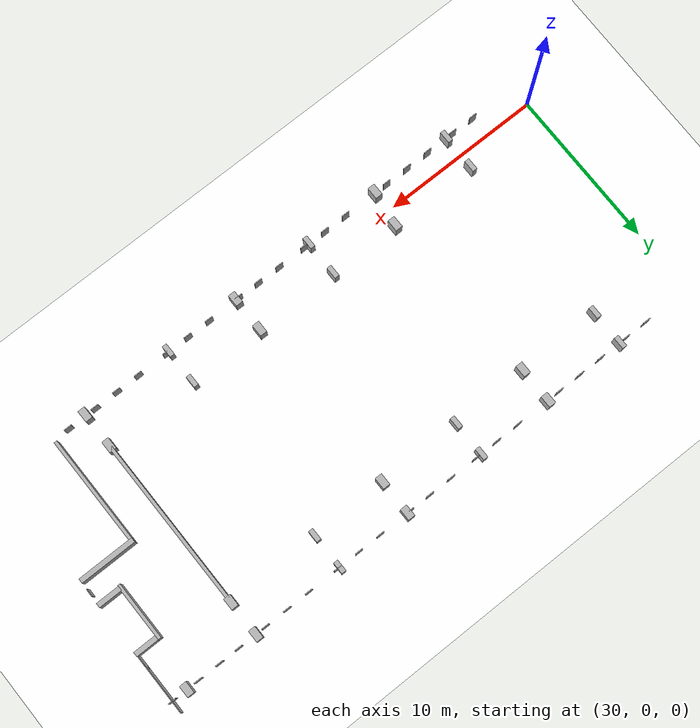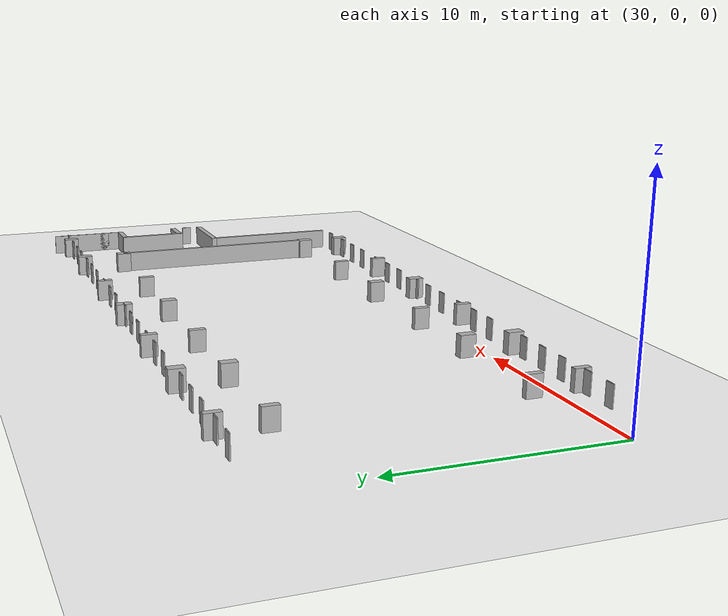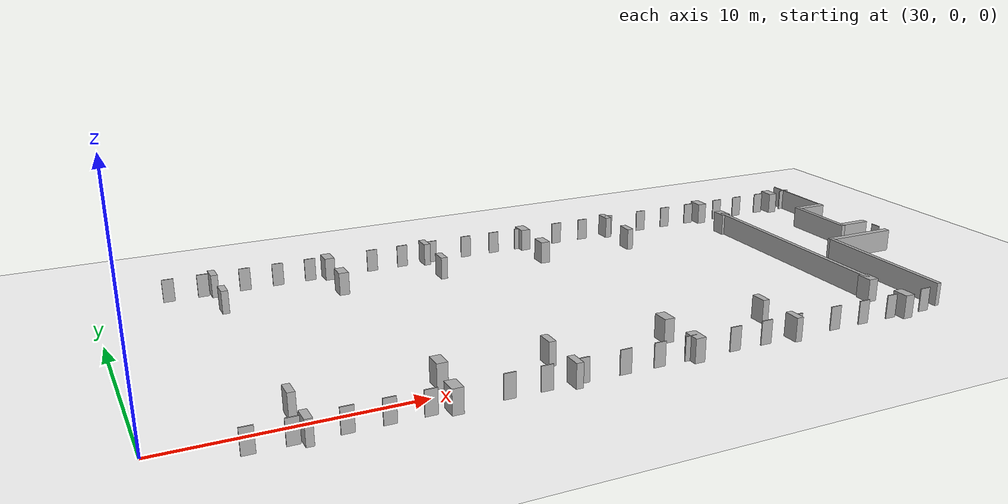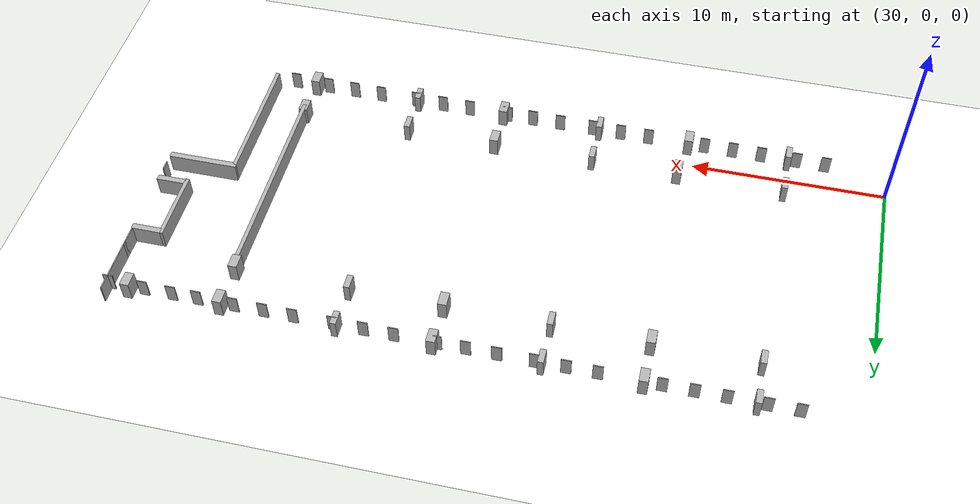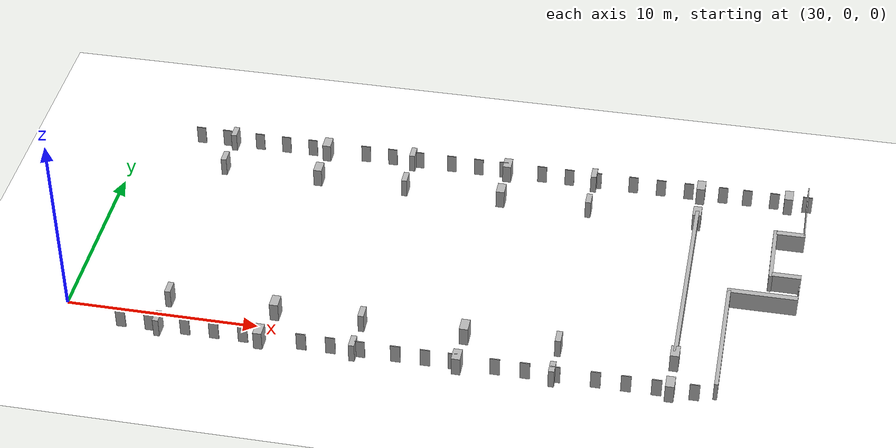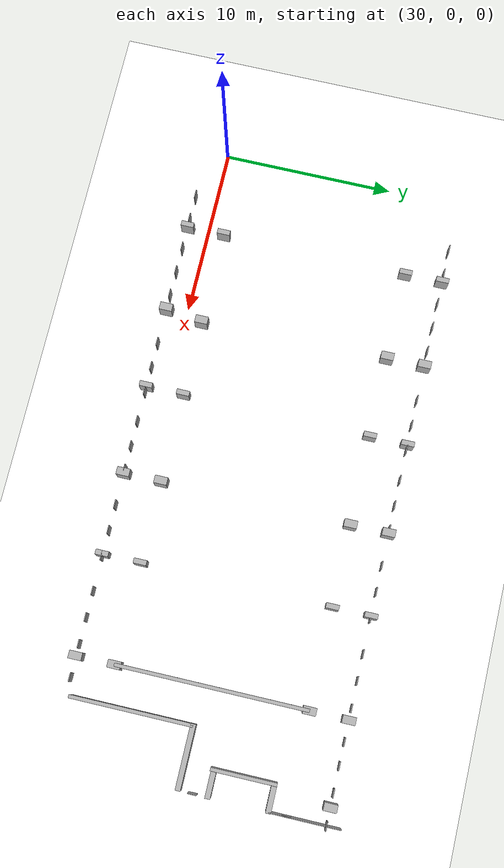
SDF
<sdf version="1.7">
 <world name="simple_corridor">
  <model name="ground_plane">
   <static>true</static>
   <link name="link">
    <collision name="collision">
     <geometry><plane><normal>0 0 1</normal><size>500 500</size></plane></geometry>
    </collision>
    <visual name="visual">
     <geometry><plane><normal>0 0 1</normal><size>500 500</size></plane></geometry>
     <material><ambient>1 1 1 1</ambient><diffuse>1 1 1 1</diffuse></material>
    </visual>
   </link>
  </model>
  <model name="wall_start_under">
   <static>true</static>
   <pose>61 6.5 0 0 0 0</pose>
   <link name="link">
    <collision name="collision"><geometry><box><size>0.2 11 2.0</size></box></geometry></collision>
    <visual name="visual">
     <geometry><box><size>0.2 11 2.0</size></box></geometry>
     <material><diffuse>0.7 0.7 0.7 1</diffuse></material>
    </visual>
   </link>
  </model>
  <model name="column_small_left_8">
   <static>true</static>
   <pose>35.15 12 0 0 0 0</pose>
   <link name="link">
    <collision name="collision"><geometry><box><size>0.3 0.75 2.0</size></box></geometry></collision>
    <visual name="visual">
     <geometry><box><size>0.3 0.75 2.0</size></box></geometry>
     <material><diffuse>0.7 0.7 0.7 1</diffuse></material>
    </visual>
   </link>
  </model>
  <model name="column_large_left_9">
   <static>true</static>
   <pose>40.4 12 0 0 0 0</pose>
   <link name="link">
    <collision name="collision"><geometry><box><size>0.45 0.75 2.0</size></box></geometry></collision>
    <visual name="visual">
     <geometry><box><size>0.45 0.75 2.0</size></box></geometry>
     <material><diffuse>0.7 0.7 0.7 1</diffuse></material>
    </visual>
   </link>
  </model>
  <model name="column_small_left_10">
   <static>true</static>
   <pose>45.2 12 0 0 0 0</pose>
   <link name="link">
    <collision name="collision"><geometry><box><size>0.3 0.75 2.0</size></box></geometry></collision>
    <visual name="visual">
     <geometry><box><size>0.3 0.75 2.0</size></box></geometry>
     <material><diffuse>0.7 0.7 0.7 1</diffuse></material>
    </visual>
   </link>
  </model>
  <model name="column_large_left_11">
   <static>true</static>
   <pose>50.45 12 0 0 0 0</pose>
   <link name="link">
    <collision name="collision"><geometry><box><size>0.45 0.75 2.0</size></box></geometry></collision>
    <visual name="visual">
     <geometry><box><size>0.45 0.75 2.0</size></box></geometry>
     <material><diffuse>0.7 0.7 0.7 1</diffuse></material>
    </visual>
   </link>
  </model>
  <model name="column_small_left_12">
   <static>true</static>
   <pose>55.2 12 0 0 0 0</pose>
   <link name="link">
    <collision name="collision"><geometry><box><size>0.3 0.75 2.0</size></box></geometry></collision>
    <visual name="visual">
     <geometry><box><size>0.3 0.75 2.0</size></box></geometry>
     <material><diffuse>0.7 0.7 0.7 1</diffuse></material>
    </visual>
   </link>
  </model>
  <model name="column_large_left_13">
   <static>true</static>
   <pose>61 12 0 0 0 0</pose>
   <link name="link">
    <collision name="collision"><geometry><box><size>0.45 0.75 2.0</size></box></geometry></collision>
    <visual name="visual">
     <geometry><box><size>0.45 0.75 2.0</size></box></geometry>
     <material><diffuse>0.7 0.7 0.7 1</diffuse></material>
    </visual>
   </link>
  </model>
  <model name="column_small_right_8">
   <static>true</static>
   <pose>35.15 1 0 0 0 0</pose>
   <link name="link">
    <collision name="collision"><geometry><box><size>0.3 0.75 2.0</size></box></geometry></collision>
    <visual name="visual">
     <geometry><box><size>0.3 0.75 2.0</size></box></geometry>
     <material><diffuse>0.7 0.7 0.7 1</diffuse></material>
    </visual>
   </link>
  </model>
  <model name="column_large_right_9">
   <static>true</static>
   <pose>40.7 1 0 0 0 0</pose>
   <link name="link">
    <collision name="collision"><geometry><box><size>0.45 0.75 2.0</size></box></geometry></collision>
    <visual name="visual">
     <geometry><box><size>0.45 0.75 2.0</size></box></geometry>
     <material><diffuse>0.7 0.7 0.7 1</diffuse></material>
    </visual>
   </link>
  </model>
  <model name="column_small_right_10">
   <static>true</static>
   <pose>45.2 1 0 0 0 0</pose>
   <link name="link">
    <collision name="collision"><geometry><box><size>0.3 0.75 2.0</size></box></geometry></collision>
    <visual name="visual">
     <geometry><box><size>0.3 0.75 2.0</size></box></geometry>
     <material><diffuse>0.7 0.7 0.7 1</diffuse></material>
    </visual>
   </link>
  </model>
  <model name="column_large_right_11">
   <static>true</static>
   <pose>50.45 1 0 0 0 0</pose>
   <link name="link">
    <collision name="collision"><geometry><box><size>0.45 0.75 2.0</size></box></geometry></collision>
    <visual name="visual">
     <geometry><box><size>0.45 0.75 2.0</size></box></geometry>
     <material><diffuse>0.7 0.7 0.7 1</diffuse></material>
    </visual>
   </link>
  </model>
  <model name="column_small_right_12">
   <static>true</static>
   <pose>55.2 1 0 0 0 0</pose>
   <link name="link">
    <collision name="collision"><geometry><box><size>0.3 0.75 2.0</size></box></geometry></collision>
    <visual name="visual">
     <geometry><box><size>0.3 0.75 2.0</size></box></geometry>
     <material><diffuse>0.7 0.7 0.7 1</diffuse></material>
    </visual>
   </link>
  </model>
  <model name="column_large_right_13">
   <static>true</static>
   <pose>61 1 0 0 0 0</pose>
   <link name="link">
    <collision name="collision"><geometry><box><size>0.45 0.75 2.0</size></box></geometry></collision>
    <visual name="visual">
     <geometry><box><size>0.45 0.75 2.0</size></box></geometry>
     <material><diffuse>0.7 0.7 0.7 1</diffuse></material>
    </visual>
   </link>
  </model>
  <model name="ban_small_left_8">
   <static>true</static>
   <pose>35.15 14.2 0 0 0 0</pose>
   <link name="link">
    <collision name="collision"><geometry><box><size>0.3 0.75 2.0</size></box></geometry></collision>
    <visual name="visual">
     <geometry><box><size>0.3 0.75 2.0</size></box></geometry>
     <material><diffuse>0.7 0.7 0.7 1</diffuse></material>
    </visual>
   </link>
  </model>
  <model name="ban_large_left_9">
   <static>true</static>
   <pose>40.4 14.2 0 0 0 0</pose>
   <link name="link">
    <collision name="collision"><geometry><box><size>0.45 0.75 2.0</size></box></geometry></collision>
    <visual name="visual">
     <geometry><box><size>0.45 0.75 2.0</size></box></geometry>
     <material><diffuse>0.7 0.7 0.7 1</diffuse></material>
    </visual>
   </link>
  </model>
  <model name="ban_small_left_10">
   <static>true</static>
   <pose>45.2 14.2 0 0 0 0</pose>
   <link name="link">
    <collision name="collision"><geometry><box><size>0.3 0.75 2.0</size></box></geometry></collision>
    <visual name="visual">
     <geometry><box><size>0.3 0.75 2.0</size></box></geometry>
     <material><diffuse>0.7 0.7 0.7 1</diffuse></material>
    </visual>
   </link>
  </model>
  <model name="ban_large_left_11">
   <static>true</static>
   <pose>50.45 14.2 0 0 0 0</pose>
   <link name="link">
    <collision name="collision"><geometry><box><size>0.45 0.75 2.0</size></box></geometry></collision>
    <visual name="visual">
     <geometry><box><size>0.45 0.75 2.0</size></box></geometry>
     <material><diffuse>0.7 0.7 0.7 1</diffuse></material>
    </visual>
   </link>
  </model>
  <model name="ban_small_left_12">
   <static>true</static>
   <pose>55.2 14.2 0 0 0 0</pose>
   <link name="link">
    <collision name="collision"><geometry><box><size>0.3 0.75 2.0</size></box></geometry></collision>
    <visual name="visual">
     <geometry><box><size>0.3 0.75 2.0</size></box></geometry>
     <material><diffuse>0.7 0.7 0.7 1</diffuse></material>
    </visual>
   </link>
  </model>
  <model name="ban_large_left_13">
   <static>true</static>
   <pose>61 14.2 0 0 0 0</pose>
   <link name="link">
    <collision name="collision"><geometry><box><size>0.45 0.75 2.0</size></box></geometry></collision>
    <visual name="visual">
     <geometry><box><size>0.45 0.75 2.0</size></box></geometry>
     <material><diffuse>0.7 0.7 0.7 1</diffuse></material>
    </visual>
   </link>
  </model>
  <model name="ban_small_right_8">
   <static>true</static>
   <pose>35.15 -1.2 0 0 0 0</pose>
   <link name="link">
    <collision name="collision"><geometry><box><size>0.3 0.75 2.0</size></box></geometry></collision>
    <visual name="visual">
     <geometry><box><size>0.3 0.75 2.0</size></box></geometry>
     <material><diffuse>0.7 0.7 0.7 1</diffuse></material>
    </visual>
   </link>
  </model>
  <model name="ban_large_right_9">
   <static>true</static>
   <pose>40.4 -1.2 0 0 0 0</pose>
   <link name="link">
    <collision name="collision"><geometry><box><size>0.45 0.75 2.0</size></box></geometry></collision>
    <visual name="visual">
     <geometry><box><size>0.45 0.75 2.0</size></box></geometry>
     <material><diffuse>0.7 0.7 0.7 1</diffuse></material>
    </visual>
   </link>
  </model>
  <model name="ban_small_right_10">
   <static>true</static>
   <pose>45.2 -1.2 0 0 0 0</pose>
   <link name="link">
    <collision name="collision"><geometry><box><size>0.3 0.75 2.0</size></box></geometry></collision>
    <visual name="visual">
     <geometry><box><size>0.3 0.75 2.0</size></box></geometry>
     <material><diffuse>0.7 0.7 0.7 1</diffuse></material>
    </visual>
   </link>
  </model>
  <model name="ban_large_right_11">
   <static>true</static>
   <pose>50.45 -1.2 0 0 0 0</pose>
   <link name="link">
    <collision name="collision"><geometry><box><size>0.45 0.75 2.0</size></box></geometry></collision>
    <visual name="visual">
     <geometry><box><size>0.45 0.75 2.0</size></box></geometry>
     <material><diffuse>0.7 0.7 0.7 1</diffuse></material>
    </visual>
   </link>
  </model>
  <model name="ban_small_right_12">
   <static>true</static>
   <pose>55.2 -1.2 0 0 0 0</pose>
   <link name="link">
    <collision name="collision"><geometry><box><size>0.3 0.75 2.0</size></box></geometry></collision>
    <visual name="visual">
     <geometry><box><size>0.3 0.75 2.0</size></box></geometry>
     <material><diffuse>0.7 0.7 0.7 1</diffuse></material>
    </visual>
   </link>
  </model>
  <model name="ban_large_right_13">
   <static>true</static>
   <pose>61 -1.2 0 0 0 0</pose>
   <link name="link">
    <collision name="collision"><geometry><box><size>0.45 0.75 2.0</size></box></geometry></collision>
    <visual name="visual">
     <geometry><box><size>0.45 0.75 2.0</size></box></geometry>
     <material><diffuse>0.7 0.7 0.7 1</diffuse></material>
    </visual>
   </link>
  </model>
  <model name="bar_left_20">
   <static>true</static>
   <pose>33.2 14.2 0 0 0 0</pose>
   <link name="link">
    <collision name="collision"><geometry><box><size>0.5 0.05 2.0</size></box></geometry></collision>
    <visual name="visual">
     <geometry><box><size>0.5 0.05 2.0</size></box></geometry>
     <material><diffuse>0.7 0.7 0.7 1</diffuse></material>
    </visual>
   </link>
  </model>
  <model name="bar_left_21">
   <static>true</static>
   <pose>34.7 14.2 0 0 0 0</pose>
   <link name="link">
    <collision name="collision"><geometry><box><size>0.5 0.05 2.0</size></box></geometry></collision>
    <visual name="visual">
     <geometry><box><size>0.5 0.05 2.0</size></box></geometry>
     <material><diffuse>0.7 0.7 0.7 1</diffuse></material>
    </visual>
   </link>
  </model>
  <model name="bar_left_22">
   <static>true</static>
   <pose>36.55 14.2 0 0 0 0</pose>
   <link name="link">
    <collision name="collision"><geometry><box><size>0.5 0.05 2.0</size></box></geometry></collision>
    <visual name="visual">
     <geometry><box><size>0.5 0.05 2.0</size></box></geometry>
     <material><diffuse>0.7 0.7 0.7 1</diffuse></material>
    </visual>
   </link>
  </model>
  <model name="bar_left_23">
   <static>true</static>
   <pose>38.05 14.2 0 0 0 0</pose>
   <link name="link">
    <collision name="collision"><geometry><box><size>0.5 0.05 2.0</size></box></geometry></collision>
    <visual name="visual">
     <geometry><box><size>0.5 0.05 2.0</size></box></geometry>
     <material><diffuse>0.7 0.7 0.7 1</diffuse></material>
    </visual>
   </link>
  </model>
  <model name="bar_left_24">
   <static>true</static>
   <pose>39.55 14.2 0 0 0 0</pose>
   <link name="link">
    <collision name="collision"><geometry><box><size>0.5 0.05 2.0</size></box></geometry></collision>
    <visual name="visual">
     <geometry><box><size>0.5 0.05 2.0</size></box></geometry>
     <material><diffuse>0.7 0.7 0.7 1</diffuse></material>
    </visual>
   </link>
  </model>
  <model name="bar_left_25">
   <static>true</static>
   <pose>42.55 14.2 0 0 0 0</pose>
   <link name="link">
    <collision name="collision"><geometry><box><size>0.5 0.05 2.0</size></box></geometry></collision>
    <visual name="visual">
     <geometry><box><size>0.5 0.05 2.0</size></box></geometry>
     <material><diffuse>0.7 0.7 0.7 1</diffuse></material>
    </visual>
   </link>
  </model>
  <model name="bar_left_26">
   <static>true</static>
   <pose>44.05 14.2 0 0 0 0</pose>
   <link name="link">
    <collision name="collision"><geometry><box><size>0.5 0.05 2.0</size></box></geometry></collision>
    <visual name="visual">
     <geometry><box><size>0.5 0.05 2.0</size></box></geometry>
     <material><diffuse>0.7 0.7 0.7 1</diffuse></material>
    </visual>
   </link>
  </model>
  <model name="bar_left_27">
   <static>true</static>
   <pose>45.55 14.2 0 0 0 0</pose>
   <link name="link">
    <collision name="collision"><geometry><box><size>0.5 0.05 2.0</size></box></geometry></collision>
    <visual name="visual">
     <geometry><box><size>0.5 0.05 2.0</size></box></geometry>
     <material><diffuse>0.7 0.7 0.7 1</diffuse></material>
    </visual>
   </link>
  </model>
  <model name="bar_left_28">
   <static>true</static>
   <pose>47.35 14.2 0 0 0 0</pose>
   <link name="link">
    <collision name="collision"><geometry><box><size>0.5 0.05 2.0</size></box></geometry></collision>
    <visual name="visual">
     <geometry><box><size>0.5 0.05 2.0</size></box></geometry>
     <material><diffuse>0.7 0.7 0.7 1</diffuse></material>
    </visual>
   </link>
  </model>
  <model name="bar_left_29">
   <static>true</static>
   <pose>48.85 14.2 0 0 0 0</pose>
   <link name="link">
    <collision name="collision"><geometry><box><size>0.5 0.05 2.0</size></box></geometry></collision>
    <visual name="visual">
     <geometry><box><size>0.5 0.05 2.0</size></box></geometry>
     <material><diffuse>0.7 0.7 0.7 1</diffuse></material>
    </visual>
   </link>
  </model>
  <model name="bar_left_30">
   <static>true</static>
   <pose>50.25 14.2 0 0 0 0</pose>
   <link name="link">
    <collision name="collision"><geometry><box><size>0.5 0.05 2.0</size></box></geometry></collision>
    <visual name="visual">
     <geometry><box><size>0.5 0.05 2.0</size></box></geometry>
     <material><diffuse>0.7 0.7 0.7 1</diffuse></material>
    </visual>
   </link>
  </model>
  <model name="bar_left_31">
   <static>true</static>
   <pose>52.35 14.2 0 0 0 0</pose>
   <link name="link">
    <collision name="collision"><geometry><box><size>0.5 0.05 2.0</size></box></geometry></collision>
    <visual name="visual">
     <geometry><box><size>0.5 0.05 2.0</size></box></geometry>
     <material><diffuse>0.7 0.7 0.7 1</diffuse></material>
    </visual>
   </link>
  </model>
  <model name="bar_left_32">
   <static>true</static>
   <pose>53.85 14.2 0 0 0 0</pose>
   <link name="link">
    <collision name="collision"><geometry><box><size>0.5 0.05 2.0</size></box></geometry></collision>
    <visual name="visual">
     <geometry><box><size>0.5 0.05 2.0</size></box></geometry>
     <material><diffuse>0.7 0.7 0.7 1</diffuse></material>
    </visual>
   </link>
  </model>
  <model name="bar_left_33">
   <static>true</static>
   <pose>55.35 14.2 0 0 0 0</pose>
   <link name="link">
    <collision name="collision"><geometry><box><size>0.5 0.05 2.0</size></box></geometry></collision>
    <visual name="visual">
     <geometry><box><size>0.5 0.05 2.0</size></box></geometry>
     <material><diffuse>0.7 0.7 0.7 1</diffuse></material>
    </visual>
   </link>
  </model>
  <model name="bar_left_34">
   <static>true</static>
   <pose>57.35 14.2 0 0 0 0</pose>
   <link name="link">
    <collision name="collision"><geometry><box><size>0.5 0.05 2.0</size></box></geometry></collision>
    <visual name="visual">
     <geometry><box><size>0.5 0.05 2.0</size></box></geometry>
     <material><diffuse>0.7 0.7 0.7 1</diffuse></material>
    </visual>
   </link>
  </model>
  <model name="bar_left_35">
   <static>true</static>
   <pose>58.85 14.2 0 0 0 0</pose>
   <link name="link">
    <collision name="collision"><geometry><box><size>0.5 0.05 2.0</size></box></geometry></collision>
    <visual name="visual">
     <geometry><box><size>0.5 0.05 2.0</size></box></geometry>
     <material><diffuse>0.7 0.7 0.7 1</diffuse></material>
    </visual>
   </link>
  </model>
  <model name="bar_left_36">
   <static>true</static>
   <pose>60.35 14.2 0 0 0 0</pose>
   <link name="link">
    <collision name="collision"><geometry><box><size>0.5 0.05 2.0</size></box></geometry></collision>
    <visual name="visual">
     <geometry><box><size>0.5 0.05 2.0</size></box></geometry>
     <material><diffuse>0.7 0.7 0.7 1</diffuse></material>
    </visual>
   </link>
  </model>
  <model name="bar_left_37">
   <static>true</static>
   <pose>62.2 14.2 0 0 0 0</pose>
   <link name="link">
    <collision name="collision"><geometry><box><size>0.5 0.05 2.0</size></box></geometry></collision>
    <visual name="visual">
     <geometry><box><size>0.5 0.05 2.0</size></box></geometry>
     <material><diffuse>0.7 0.7 0.7 1</diffuse></material>
    </visual>
   </link>
  </model>
  <model name="bar_right_20">
   <static>true</static>
   <pose>33.2 -1.2 0 0 0 0</pose>
   <link name="link">
    <collision name="collision"><geometry><box><size>0.5 0.05 2.0</size></box></geometry></collision>
    <visual name="visual">
     <geometry><box><size>0.5 0.05 2.0</size></box></geometry>
     <material><diffuse>0.7 0.7 0.7 1</diffuse></material>
    </visual>
   </link>
  </model>
  <model name="bar_right_21">
   <static>true</static>
   <pose>34.7 -1.2 0 0 0 0</pose>
   <link name="link">
    <collision name="collision"><geometry><box><size>0.5 0.05 2.0</size></box></geometry></collision>
    <visual name="visual">
     <geometry><box><size>0.5 0.05 2.0</size></box></geometry>
     <material><diffuse>0.7 0.7 0.7 1</diffuse></material>
    </visual>
   </link>
  </model>
  <model name="bar_right_22">
   <static>true</static>
   <pose>36.55 -1.2 0 0 0 0</pose>
   <link name="link">
    <collision name="collision"><geometry><box><size>0.5 0.05 2.0</size></box></geometry></collision>
    <visual name="visual">
     <geometry><box><size>0.5 0.05 2.0</size></box></geometry>
     <material><diffuse>0.7 0.7 0.7 1</diffuse></material>
    </visual>
   </link>
  </model>
  <model name="bar_right_23">
   <static>true</static>
   <pose>38.05 -1.2 0 0 0 0</pose>
   <link name="link">
    <collision name="collision"><geometry><box><size>0.5 0.05 2.0</size></box></geometry></collision>
    <visual name="visual">
     <geometry><box><size>0.5 0.05 2.0</size></box></geometry>
     <material><diffuse>0.7 0.7 0.7 1</diffuse></material>
    </visual>
   </link>
  </model>
  <model name="bar_right_24">
   <static>true</static>
   <pose>39.55 -1.2 0 0 0 0</pose>
   <link name="link">
    <collision name="collision"><geometry><box><size>0.5 0.05 2.0</size></box></geometry></collision>
    <visual name="visual">
     <geometry><box><size>0.5 0.05 2.0</size></box></geometry>
     <material><diffuse>0.7 0.7 0.7 1</diffuse></material>
    </visual>
   </link>
  </model>
  <model name="bar_right_25">
   <static>true</static>
   <pose>42.55 -1.2 0 0 0 0</pose>
   <link name="link">
    <collision name="collision"><geometry><box><size>0.5 0.05 2.0</size></box></geometry></collision>
    <visual name="visual">
     <geometry><box><size>0.5 0.05 2.0</size></box></geometry>
     <material><diffuse>0.7 0.7 0.7 1</diffuse></material>
    </visual>
   </link>
  </model>
  <model name="bar_right_26">
   <static>true</static>
   <pose>44.05 -1.2 0 0 0 0</pose>
   <link name="link">
    <collision name="collision"><geometry><box><size>0.5 0.05 2.0</size></box></geometry></collision>
    <visual name="visual">
     <geometry><box><size>0.5 0.05 2.0</size></box></geometry>
     <material><diffuse>0.7 0.7 0.7 1</diffuse></material>
    </visual>
   </link>
  </model>
  <model name="bar_right_27">
   <static>true</static>
   <pose>45.55 -1.2 0 0 0 0</pose>
   <link name="link">
    <collision name="collision"><geometry><box><size>0.5 0.05 2.0</size></box></geometry></collision>
    <visual name="visual">
     <geometry><box><size>0.5 0.05 2.0</size></box></geometry>
     <material><diffuse>0.7 0.7 0.7 1</diffuse></material>
    </visual>
   </link>
  </model>
  <model name="bar_right_28">
   <static>true</static>
   <pose>47.35 -1.2 0 0 0 0</pose>
   <link name="link">
    <collision name="collision"><geometry><box><size>0.5 0.05 2.0</size></box></geometry></collision>
    <visual name="visual">
     <geometry><box><size>0.5 0.05 2.0</size></box></geometry>
     <material><diffuse>0.7 0.7 0.7 1</diffuse></material>
    </visual>
   </link>
  </model>
  <model name="bar_right_29">
   <static>true</static>
   <pose>48.85 -1.2 0 0 0 0</pose>
   <link name="link">
    <collision name="collision"><geometry><box><size>0.5 0.05 2.0</size></box></geometry></collision>
    <visual name="visual">
     <geometry><box><size>0.5 0.05 2.0</size></box></geometry>
     <material><diffuse>0.7 0.7 0.7 1</diffuse></material>
    </visual>
   </link>
  </model>
  <model name="bar_right_30">
   <static>true</static>
   <pose>50.25 -1.2 0 0 0 0</pose>
   <link name="link">
    <collision name="collision"><geometry><box><size>0.5 0.05 2.0</size></box></geometry></collision>
    <visual name="visual">
     <geometry><box><size>0.5 0.05 2.0</size></box></geometry>
     <material><diffuse>0.7 0.7 0.7 1</diffuse></material>
    </visual>
   </link>
  </model>
  <model name="bar_right_31">
   <static>true</static>
   <pose>52.35 -1.2 0 0 0 0</pose>
   <link name="link">
    <collision name="collision"><geometry><box><size>0.5 0.05 2.0</size></box></geometry></collision>
    <visual name="visual">
     <geometry><box><size>0.5 0.05 2.0</size></box></geometry>
     <material><diffuse>0.7 0.7 0.7 1</diffuse></material>
    </visual>
   </link>
  </model>
  <model name="bar_right_32">
   <static>true</static>
   <pose>53.85 -1.2 0 0 0 0</pose>
   <link name="link">
    <collision name="collision"><geometry><box><size>0.5 0.05 2.0</size></box></geometry></collision>
    <visual name="visual">
     <geometry><box><size>0.5 0.05 2.0</size></box></geometry>
     <material><diffuse>0.7 0.7 0.7 1</diffuse></material>
    </visual>
   </link>
  </model>
  <model name="bar_right_33">
   <static>true</static>
   <pose>55.35 -1.2 0 0 0 0</pose>
   <link name="link">
    <collision name="collision"><geometry><box><size>0.5 0.05 2.0</size></box></geometry></collision>
    <visual name="visual">
     <geometry><box><size>0.5 0.05 2.0</size></box></geometry>
     <material><diffuse>0.7 0.7 0.7 1</diffuse></material>
    </visual>
   </link>
  </model>
  <model name="bar_right_34">
   <static>true</static>
   <pose>57.35 -1.2 0 0 0 0</pose>
   <link name="link">
    <collision name="collision"><geometry><box><size>0.5 0.05 2.0</size></box></geometry></collision>
    <visual name="visual">
     <geometry><box><size>0.5 0.05 2.0</size></box></geometry>
     <material><diffuse>0.7 0.7 0.7 1</diffuse></material>
    </visual>
   </link>
  </model>
  <model name="bar_right_35">
   <static>true</static>
   <pose>58.85 -1.2 0 0 0 0</pose>
   <link name="link">
    <collision name="collision"><geometry><box><size>0.5 0.05 2.0</size></box></geometry></collision>
    <visual name="visual">
     <geometry><box><size>0.5 0.05 2.0</size></box></geometry>
     <material><diffuse>0.7 0.7 0.7 1</diffuse></material>
    </visual>
   </link>
  </model>
  <model name="bar_right_36">
   <static>true</static>
   <pose>60.35 -1.2 0 0 0 0</pose>
   <link name="link">
    <collision name="collision"><geometry><box><size>0.5 0.05 2.0</size></box></geometry></collision>
    <visual name="visual">
     <geometry><box><size>0.5 0.05 2.0</size></box></geometry>
     <material><diffuse>0.7 0.7 0.7 1</diffuse></material>
    </visual>
   </link>
  </model>
  <model name="bar_right_37">
   <static>true</static>
   <pose>62.2 -1.2 0 0 0 0</pose>
   <link name="link">
    <collision name="collision"><geometry><box><size>0.5 0.05 2.0</size></box></geometry></collision>
    <visual name="visual">
     <geometry><box><size>0.5 0.05 2.0</size></box></geometry>
     <material><diffuse>0.7 0.7 0.7 1</diffuse></material>
    </visual>
   </link>
  </model>
  <model name="wall_start_on_opposite">
   <static>true</static>
   <pose>63.2 2.5 0 0 0 0</pose>
   <link name="link">
    <collision name="collision"><geometry><box><size>0.2 7 2.0</size></box></geometry></collision>
    <visual name="visual">
     <geometry><box><size>0.2 7 2.0</size></box></geometry>
     <material><diffuse>0.7 0.7 0.7 1</diffuse></material>
    </visual>
   </link>
  </model>
  <model name="wall_1">
   <static>true</static>
   <pose>64.9 6 0 0 0 0</pose>
   <link name="link">
    <collision name="collision"><geometry><box><size>3.6 0.3 2.0</size></box></geometry></collision>
    <visual name="visual">
     <geometry><box><size>3.6 0.3 2.0</size></box></geometry>
     <material><diffuse>0.7 0.7 0.7 1</diffuse></material>
    </visual>
   </link>
  </model>
  <model name="wall_2">
   <static>true</static>
   <pose>66 7.65 0 0 0 0</pose>
   <link name="link">
    <collision name="collision"><geometry><box><size>1.5 0.3 2.0</size></box></geometry></collision>
    <visual name="visual">
     <geometry><box><size>1.5 0.3 2.0</size></box></geometry>
     <material><diffuse>0.7 0.7 0.7 1</diffuse></material>
    </visual>
   </link>
  </model>
  <model name="wall_3">
   <static>true</static>
   <pose>65.2 9.3 0 0 0 0</pose>
   <link name="link">
    <collision name="collision"><geometry><box><size>0.2 3.7 2.0</size></box></geometry></collision>
    <visual name="visual">
     <geometry><box><size>0.2 3.7 2.0</size></box></geometry>
     <material><diffuse>0.7 0.7 0.7 1</diffuse></material>
    </visual>
   </link>
  </model>
  <model name="wall_4">
   <static>true</static>
   <pose>66 11 0 0 0 0</pose>
   <link name="link">
    <collision name="collision"><geometry><box><size>1.5 0.3 2.0</size></box></geometry></collision>
    <visual name="visual">
     <geometry><box><size>1.5 0.3 2.0</size></box></geometry>
     <material><diffuse>0.7 0.7 0.7 1</diffuse></material>
    </visual>
   </link>
  </model>
  <model name="wall_left_1">
   <static>true</static>
   <pose>66.7 6.8 0 0 0 0</pose>
   <link name="link">
    <collision name="collision"><geometry><box><size>0.05 0.5 2.0</size></box></geometry></collision>
    <visual name="visual">
     <geometry><box><size>0.05 0.5 2.0</size></box></geometry>
     <material><diffuse>0.7 0.7 0.7 1</diffuse></material>
    </visual>
   </link>
  </model>
  <model name="wall_left_2">
   <static>true</static>
   <pose>66.7 12 0 0 0 0</pose>
   <link name="link">
    <collision name="collision"><geometry><box><size>0.05 0.5 2.0</size></box></geometry></collision>
    <visual name="visual">
     <geometry><box><size>0.05 0.5 2.0</size></box></geometry>
     <material><diffuse>0.7 0.7 0.7 1</diffuse></material>
    </visual>
   </link>
  </model>
  <model name="wall_left_3">
   <static>true</static>
   <pose>66.7 13 0 0 0 0</pose>
   <link name="link">
    <collision name="collision"><geometry><box><size>0.05 4 2.0</size></box></geometry></collision>
    <visual name="visual">
     <geometry><box><size>0.05 4 2.0</size></box></geometry>
     <material><diffuse>0.7 0.7 0.7 1</diffuse></material>
    </visual>
   </link>
  </model>
  <model name="wall_left_4">
   <static>true</static>
   <pose>66.7 14.2 0 0 0 0</pose>
   <link name="link">
    <collision name="collision"><geometry><box><size>0.5 0.05 2.0</size></box></geometry></collision>
    <visual name="visual">
     <geometry><box><size>0.5 0.05 2.0</size></box></geometry>
     <material><diffuse>0.7 0.7 0.7 1</diffuse></material>
    </visual>
   </link>
  </model>
  <model name="wall_left_5">
   <static>true</static>
   <pose>65.7 14.2 0 0 0 0</pose>
   <link name="link">
    <collision name="collision"><geometry><box><size>0.45 0.75 2.0</size></box></geometry></collision>
    <visual name="visual">
     <geometry><box><size>0.45 0.75 2.0</size></box></geometry>
     <material><diffuse>0.7 0.7 0.7 1</diffuse></material>
    </visual>
   </link>
  </model>
  <model name="bar_left_39">
   <static>true</static>
   <pose>63.5 14.2 0 0 0 0</pose>
   <link name="link">
    <collision name="collision"><geometry><box><size>0.5 0.05 2.0</size></box></geometry></collision>
    <visual name="visual">
     <geometry><box><size>0.5 0.05 2.0</size></box></geometry>
     <material><diffuse>0.7 0.7 0.7 1</diffuse></material>
    </visual>
   </link>
  </model>
  <model name="bar_left_40">
   <static>true</static>
   <pose>64.95 14.2 0 0 0 0</pose>
   <link name="link">
    <collision name="collision"><geometry><box><size>0.5 0.05 2.0</size></box></geometry></collision>
    <visual name="visual">
     <geometry><box><size>0.5 0.05 2.0</size></box></geometry>
     <material><diffuse>0.7 0.7 0.7 1</diffuse></material>
    </visual>
   </link>
  </model>
 </world>
</sdf>
